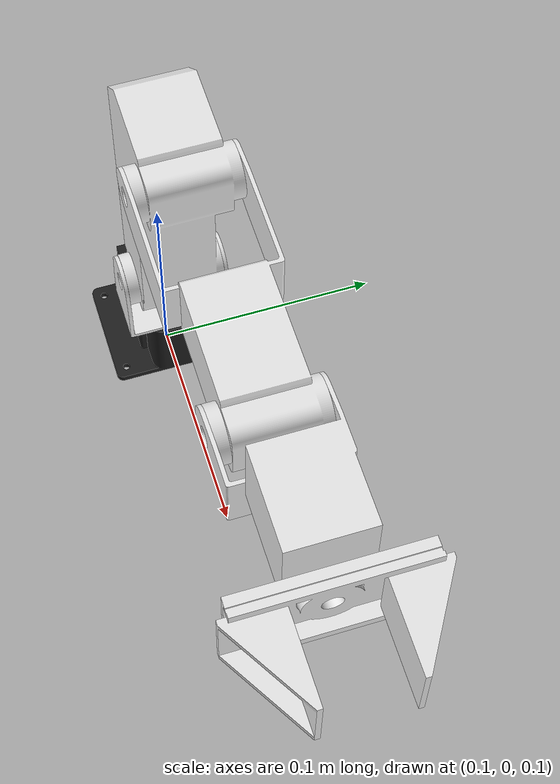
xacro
<?xml version="1.0"?>
<!-- Describe URDF for PhantomX Pincher Arm -->
<robot name="phantomx_pincher_arm" xmlns:xacro="http://ros.org/wiki/xacro">

    <!-- We can configure joints velocity limit and lower/upper limits
    to allow access to different operational areas, e.g. left handed vs. right handed robot -->
    <xacro:property name="joints_vlimit" value="1.571"/>
    <xacro:property name="pan_llimit" value="-1.74"/>
    <xacro:property name="pan_ulimit" value="1.74"/>
    <xacro:property name="shoulder_llimit" value="-1.98"/>
    <xacro:property name="shoulder_ulimit" value="1.88"/>
    <xacro:property name="elbow_llimit" value="-1.58"/>
    <xacro:property name="elbow_ulimit" value="0.59"/>
    <xacro:property name="wrist_llimit" value="-1.79"/>
    <xacro:property name="wrist_ulimit" value="1.67"/>

    <!-- Included URDF Files -->
    <xacro:include filename="$(find phantomx_pincher_arm_description)/urdf/phantomx_pincher_arm.xacro"/>

    <!-- As we don't have a base here, add a base_link link as location reference -->
    <link name="base_link"/>

    <!-- phantomx_pincher_arm macro //joints_vlimit="${joints_vlimit}" pan_llimit="-2.617" pan_ulimit="2.617// -->
    <phantomx_pincher_arm parent="base_link" color="White" gripper_color="White">
        <origin xyz="0.12 0.00 0.140"/>
    </phantomx_pincher_arm>

</robot>

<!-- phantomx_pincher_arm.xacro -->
<!-- Arm description for PhantomX Pincher arm -->
<robot name="phantomx_pincher_arm" xmlns:xacro="http://ros.org/wiki/xacro">
  <xacro:include filename="$(find phantomx_pincher_arm_description)/urdf/arm_hardware.xacro"/>

  <!--joints_vlimit pan_llimit pan_ulimit-->
  <xacro:macro name="phantomx_pincher_arm" params="parent color gripper_color *origin">

    <!-- arm base link -->
    <pincher_base parent="${parent}" name="arm_base">
      <xacro:insert_block name="origin"/>
    </pincher_base>
    <bracket_F2_revolute parent="arm_base_link" name="arm_shoulder_pan" color="${color}"
                         vlimit="${joints_vlimit}" llimit="${pan_llimit}" ulimit="${pan_ulimit}">
      <origin xyz="0 0 0.020" rpy="0 0 0"/>
    </bracket_F2_revolute>
    <transmission name="arm_shoulder_pan_transmission">
      <type>transmission_interface/SimpleTransmission</type>
      <joint name="arm_shoulder_pan_joint">
        <hardwareInterface>EffortJointInterface</hardwareInterface>
      </joint>
      <actuator name="arm_shoulder_pan_actuator">
        <hardwareInterface>EffortJointInterface</hardwareInterface>
        <mechanicalReduction>1</mechanicalReduction>
      </actuator>
    </transmission>

    <!-- shoulder lift joint -->
    <pincher_bicep parent="arm_shoulder_pan_link" name="arm_bicep" color="${color}"
                         vlimit="${joints_vlimit}" llimit="${shoulder_llimit}" ulimit="${shoulder_ulimit}">
      <origin xyz="0 0 0.027" rpy="0 0 0"/>
    </pincher_bicep>

    <transmission name="arm_bicep_transmission">
      <type>transmission_interface/SimpleTransmission</type>
      <joint name="arm_bicep_joint">
        <hardwareInterface>EffortJointInterface</hardwareInterface>
      </joint>
      <actuator name="arm_bicep_actuator">
        <hardwareInterface>EffortJointInterface</hardwareInterface>
        <mechanicalReduction>1</mechanicalReduction>
      </actuator>
    </transmission>

    <!-- elbow joint -->
    <pincher_forearm parent="arm_bicep_link" name="arm_forearm" color="${color}"
                         vlimit="${joints_vlimit}" llimit="${elbow_llimit}" ulimit="${elbow_ulimit}">
      <origin xyz="0.0325 0 0.104" rpy="0 0 0"/>
    </pincher_forearm>

    <transmission name="arm_forearm_transmission">
      <type>transmission_interface/SimpleTransmission</type>
      <joint name="arm_forearm_joint">
        <hardwareInterface>EffortJointInterface</hardwareInterface>
      </joint>
      <actuator name="arm_forearm_actuator">
        <hardwareInterface>EffortJointInterface</hardwareInterface>
        <mechanicalReduction>1</mechanicalReduction>
      </actuator>
    </transmission>

    <!-- wrist joint -->
    <pincher_wrist parent="arm_forearm_link" name="arm_wrist_flex" color="${color}"
                         vlimit="${joints_vlimit}" llimit="${wrist_llimit}" ulimit="${wrist_ulimit}">
      <origin xyz="0.104 0 0" rpy="0 0 0"/>
    </pincher_wrist>
    <transmission name="arm_wrist_flex_transmission">
      <type>transmission_interface/SimpleTransmission</type>
      <joint name="arm_wrist_flex_joint">
        <hardwareInterface>EffortJointInterface</hardwareInterface>
      </joint>
      <actuator name="arm_wrist_flex_actuator">
        <hardwareInterface>EffortJointInterface</hardwareInterface>
        <mechanicalReduction>1</mechanicalReduction>
      </actuator>
    </transmission>

  <!-- gripper -->
  <xacro:include filename="$(find phantomx_pincher_arm_description)/urdf/phantomx_pincher_gripper.xacro"/>

<!-- gripper_link -->
    <link name="gripper_link"/>
    <joint name="gripper_link_joint" type="revolute">
      <origin xyz="0.110 0 0" rpy="0 0 0"/>
      <parent link="arm_wrist_flex_link"/>
      <child link="gripper_link"/>
      <limit effort="6" velocity="1" lower="-3.14" upper="3.14"/>
      <axis xyz="1 0 0"/>
    </joint>

  </xacro:macro>

</robot>

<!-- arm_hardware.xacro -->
<!-- Basic URDF components for PhantomX Pincher Arm-->
<robot xmlns:xacro="http://ros.org/wiki/xacro">
  <xacro:property name="M_PI" value="3.14159"/>

  <xacro:macro name="pincher_base" params="parent name *origin">
    <joint name="${name}_joint" type="fixed">
      <xacro:insert_block name="origin"/>
      <parent link="${parent}"/>
      <child link="${name}_link"/>
    </joint>

    <link name="${name}_link">
      <!-- TODO: This inertial field needs doesn't contain reliable data!! -->
      <inertial>
        <mass value="0.055"/>
        <origin xyz="0 0 0"/>
        <inertia ixx="0.000017012" ixy="0.0" ixz="0.0"
                 iyy="0.000013258" iyz="0.0"
                 izz="0.000009483"/>
      </inertial>

      <visual>
        <origin xyz="0 0 0" rpy="0 0 0"/>
        <geometry>
          <mesh filename="package://phantomx_pincher_arm_description/meshes/PincherBase.stl" scale="1.0 1.0 1.0"/>
        </geometry>
        <material name="Black"/>
      </visual>

      <collision>
        <origin xyz="0 0 0" rpy="0 0 0"/>
        <geometry>
          <mesh filename="package://phantomx_pincher_arm_description/meshes/PincherBase.stl" scale="1.0 1.0 1.0"/>
        </geometry>
      </collision>
    </link>

    <gazebo reference="${name}_link">
      <material>Gazebo/Black</material>
      <gravity>true</gravity>
    </gazebo>
  </xacro:macro>

  <xacro:macro name="bracket_F2_revolute" params="parent name color llimit ulimit vlimit *origin">
    <joint name="${name}_joint" type="revolute">
      <xacro:insert_block name="origin"/>
      <axis xyz="0 0 1"/>
      <limit effort="6" velocity="${vlimit}" lower="${llimit}" upper="${ulimit}"/>
      <dynamics friction="0.13"/>
      <parent link="${parent}"/>
      <child link="${name}_link"/>
    </joint>

    <link name="${name}_link">
      <!-- TODO: This inertial field needs doesn't contain reliable data!! -->
      <inertial>
        <mass value="0.008"/>
        <origin xyz="0 0 0"/>
        <inertia ixx="0.000001" ixy="0.0" ixz="0.0"
                 iyy="0.000001" iyz="0.0"
                 izz="0.000001"/>
      </inertial>

      <visual>
        <origin xyz="0 0 0" rpy="0 0 0"/>
        <geometry>
          <mesh filename="package://phantomx_pincher_arm_description/meshes/F2Bracket.stl" scale="1.0 1.0 1.0"/>
        </geometry>
        <material name="${color}"/>
      </visual>

      <collision>
        <origin xyz="0 0 0" rpy="0 0 0"/>
        <geometry>
          <mesh filename="package://phantomx_pincher_arm_description/meshes/F2Bracket.stl" scale="1.0 1.0 1.0"/>
        </geometry>
      </collision>
    </link>

    <gazebo reference="${name}_link">
      <material>Gazebo/${color}</material>
      <gravity>true</gravity>
    </gazebo>
  </xacro:macro>

  <xacro:macro name="pincher_bicep" params="parent name color llimit ulimit vlimit *origin">
    <joint name="${name}_joint" type="revolute">
      <xacro:insert_block name="origin"/>
      <axis xyz="0 1 0"/>
      <limit effort="6" velocity="${vlimit}" lower="${llimit}" upper="${ulimit}"/>
      <dynamics friction="0.13"/>
      <parent link="${parent}"/>
      <child link="${name}_link"/>
    </joint>

    <link name="${name}_link">
      <!-- TODO: This inertial field needs doesn't contain reliable data!! -->
      <inertial>
        <mass value="0.016"/>
        <origin xyz="0 0 0"/>
        <inertia ixx="0.000001" ixy="0.0" ixz="0.0"
                 iyy="0.000001" iyz="0.0"
                 izz="0.000001"/>
      </inertial>

      <visual>
        <origin xyz=" 0 0 0 " rpy="0 0 0"/>
        <geometry>
          <mesh filename="package://phantomx_pincher_arm_description/meshes/PincherBicep.stl" scale="1.0 1.0 1.0"/>
        </geometry>
        <material name="${color}"/>
      </visual>

      <collision>
        <origin xyz="0.0 0.0 0.0" rpy="0 0 0"/>
        <geometry>
          <mesh filename="package://phantomx_pincher_arm_description/meshes/PincherBicep.stl" scale="1.0 1.0 1.0"/>
        </geometry>
      </collision>
    </link>

    <gazebo reference="${name}_link">
      <material>Gazebo/${color}</material>
      <gravity>true</gravity>
    </gazebo>
  </xacro:macro>

  <xacro:macro name="pincher_forearm" params="parent name color llimit ulimit vlimit *origin">
    <joint name="${name}_joint" type="revolute">
      <xacro:insert_block name="origin"/>
      <axis xyz="0 -1 0"/>
      <limit effort="6" velocity="${vlimit}" lower="${llimit}" upper="${ulimit}"/>
      <dynamics friction="0.13"/>
      <parent link="${parent}"/>
      <child link="${name}_link"/>
    </joint>

    <link name="${name}_link">
      <!-- TODO: This inertial field needs doesn't contain reliable data!! -->
      <inertial>
        <mass value="0.016"/>
        <origin xyz="0 0 0"/>
        <inertia ixx="0.000001" ixy="0.0" ixz="0.0"
                 iyy="0.000001" iyz="0.0"
                 izz="0.000001"/>
      </inertial>

      <visual>
        <origin xyz=" 0 0 0 " rpy="0 0 0"/>
        <geometry>
          <mesh filename="package://phantomx_pincher_arm_description/meshes/PincherForeArm.stl" scale="1.0 1.0 1.0"/>
        </geometry>
        <material name="${color}"/>
      </visual>

      <collision>
        <origin xyz="0.0 0.0 0.0" rpy="0 0 0"/>
        <geometry>
          <mesh filename="package://phantomx_pincher_arm_description/meshes/PincherForeArm.stl" scale="1.0 1.0 1.0"/>
        </geometry>
      </collision>
    </link>

    <gazebo reference="${name}_link">
      <material>Gazebo/${color}</material>
      <gravity>true</gravity>
    </gazebo>
  </xacro:macro>

  <xacro:macro name="pincher_wrist" params="parent name color llimit ulimit vlimit *origin">
    <joint name="${name}_joint" type="revolute">
      <xacro:insert_block name="origin"/>
      <axis xyz="0 -1 0"/>
      <limit effort="6" velocity="${vlimit}" lower="${llimit}" upper="${ulimit}"/>
      <dynamics friction="0.13"/>
      <parent link="${parent}"/>
      <child link="${name}_link"/>
    </joint>

    <link name="${name}_link">
      <!-- TODO: This inertial field needs doesn't contain reliable data!! -->
      <inertial>
        <mass value="0.01"/>
        <origin xyz="0 0 0"/>
        <inertia ixx="0.000001" ixy="0.0" ixz="0.0"
                 iyy="0.000001" iyz="0.0"
                 izz="0.000001"/>
      </inertial>

      <visual>
        <origin xyz=" 0 0 0 " rpy="0 0 0"/>
        <geometry>
          <mesh filename="package://phantomx_pincher_arm_description/meshes/PincherWristGripper.stl" scale="1.0 1.0 1.0"/>
        </geometry>
        <material name="${color}"/>
      </visual>

      <collision>
        <origin xyz="0.0 0.0 0.0" rpy="0 0 0"/>
        <geometry>
          <mesh filename="package://phantomx_pincher_arm_description/meshes/PincherWristGripper.stl" scale="1.0 1.0 1.0"/>
        </geometry>
      </collision>
    </link>

    <gazebo reference="${name}_link">
      <material>Gazebo/${color}</material>
      <gravity>true</gravity>
    </gazebo>
  </xacro:macro>

  <xacro:macro name="pincher_finger" params="name color *origin">
    <link name="${name}_link">
      <inertial>
        <!-- TODO: This inertial field needs doesn't contain reliable data!! -->
        <mass value="0.01"/>
        <origin xyz="0 0 0"/>
        <inertia ixx="0.000001" ixy="0.0" ixz="0.0"
                 iyy="0.000001" iyz="0.0"
                 izz="0.000001"/>
      </inertial>
      <visual>
        <xacro:insert_block name="origin"/>
        <geometry>
          <mesh filename="package://phantomx_pincher_arm_description/meshes/PincherFinger.stl" scale="1.0 1.0 1.0"/>
        </geometry>
        <material name="${color}"/>
      </visual>
      <collision>
        <xacro:insert_block name="origin"/>
        <geometry>
          <mesh filename="package://phantomx_pincher_arm_description/meshes/PincherFinger.stl" scale="1.0 1.0 1.0"/>
        </geometry>
      </collision>
    </link>

    <gazebo reference="${name}_link">
      <material>Gazebo/${color}</material>
      <gravity>true</gravity>
    </gazebo>
  </xacro:macro>
</robot>

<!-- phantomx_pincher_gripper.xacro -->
<!-- PhantomX Pincher gripper URDF-->
<robot xmlns:xacro="http://ros.org/wiki/xacro">

    <!-- gripper joint -->
    <!-- Finger 1 -->
    <joint name="gripper_joint" type="prismatic">
      <origin xyz="0.070 0 0" rpy="0 0 0"/>
      <axis xyz="0 1 0"/>
      <limit effort="30" velocity="0.5" lower="0.002" upper="0.032"/>
      <parent link="arm_wrist_flex_link"/>
      <child link="gripper_active_link"/>
    </joint>

    <pincher_finger name="gripper_active" color="${color}" >
      <origin xyz="0 0 0" rpy="0 0 0"/>
    </pincher_finger>

    <!-- Finger 2 -->
    <!-- Note: currently static but should be a Mimic of Finger 1 -->
    <joint name="gripper2_joint" type="fixed">
      <origin xyz="0.070 -0.016 0" rpy="0 0 0"/>
      <parent link="arm_wrist_flex_link"/>
      <child link="gripper_active2_link"/>
    </joint>

    <pincher_finger name="gripper_active2" color="${color}" >
      <origin xyz="0 0 0" rpy="${M_PI} 0 0"/>
    </pincher_finger>

    <!-- Using Mimic -->
    <!-- gripper 2 joint -->
</robot>
